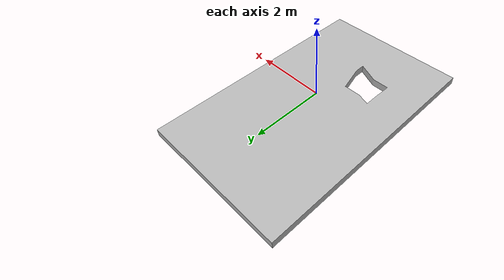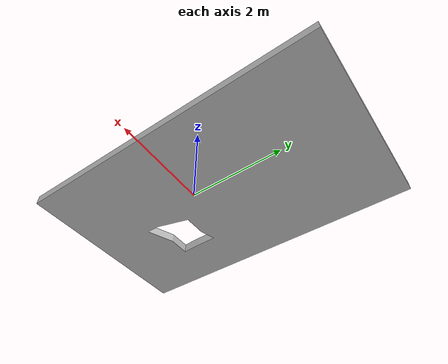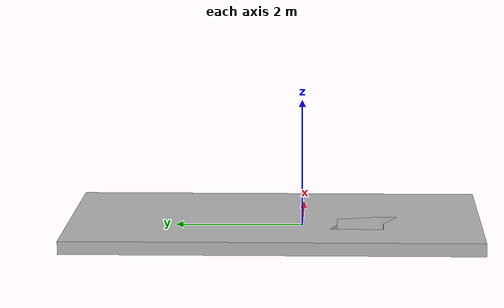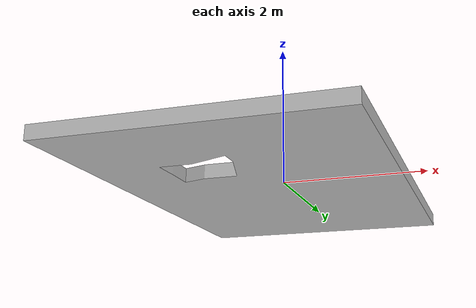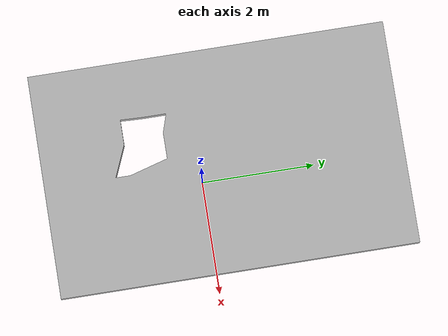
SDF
<?xml version='1.0'?>
<sdf version="1.6">
<model name="broken_window">
  <static>true</static>
    <link name="link">
      <visual name="visual">
        <geometry>
          <mesh>
            <scale>0.4 0.4 1</scale>
            <uri>model://broken_window/meshes/broken_window.dae</uri>
          </mesh>
        </geometry>
      </visual>

      <collision name="window">
        <geometry>
          <mesh>
            <scale>0.4 0.4 1</scale>
            <uri>model://broken_window/meshes/broken_window.dae</uri>
          </mesh>
        </geometry>
      </collision>
    </link>
  </model>
</sdf>
